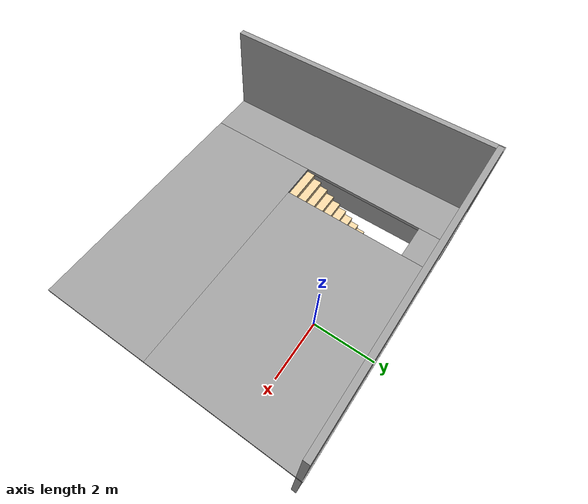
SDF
<?xml version='1.0'?>
<sdf version='1.6'>
  <model name='wizzy_house'>
    <pose frame=''>-0.11818 -1.68308 0 0 -0 0</pose>
    <link name='Floor_3'>
      <pose frame=''>0 -0 2.5 0 -0 0</pose>
      <visual name='Floor_3_Visual_0'>
        <pose frame=''>-3.44651 0 0.05 0 -0 0</pose>
        <geometry>
          <box>
            <size>1.38082 7.48526 0.1</size>
          </box>
        </geometry>
        <material>
          <script>
            <uri>file://media/materials/scripts/gazebo.material</uri>
            <name>Gazebo/Grey</name>
          </script>
          <ambient>1 1 1 1</ambient>
        </material>
        <meta>
          <layer>1</layer>
        </meta>
      </visual>
      <collision name='Floor_3_Collision_0'>
        <geometry>
          <box>
            <size>1.38082 7.48526 0.1</size>
          </box>
        </geometry>
        <pose frame=''>-3.44651 0 0.05 0 -0 0</pose>
      </collision>
      <visual name='Floor_3_Visual_1'>
        <pose frame=''>0.69041 -2.16748 0.05 0 -0 0</pose>
        <geometry>
          <box>
            <size>6.89302 3.1503 0.1</size>
          </box>
        </geometry>
        <material>
          <script>
            <uri>file://media/materials/scripts/gazebo.material</uri>
            <name>Gazebo/Grey</name>
          </script>
          <ambient>1 1 1 1</ambient>
        </material>
        <meta>
          <layer>1</layer>
        </meta>
      </visual>
      <collision name='Floor_3_Collision_1'>
        <geometry>
          <box>
            <size>6.89302 3.1503 0.1</size>
          </box>
        </geometry>
        <pose frame=''>0.69041 -2.16748 0.05 0 -0 0</pose>
      </collision>
      <visual name='Floor_3_Visual_2'>
        <pose frame=''>1.19041 1.57515 0.05 0 -0 0</pose>
        <geometry>
          <box>
            <size>5.89302 4.33496 0.1</size>
          </box>
        </geometry>
        <material>
          <script>
            <uri>file://media/materials/scripts/gazebo.material</uri>
            <name>Gazebo/Grey</name>
          </script>
          <ambient>1 1 1 1</ambient>
        </material>
        <meta>
          <layer>1</layer>
        </meta>
      </visual>
      <collision name='Floor_3_Collision_2'>
        <geometry>
          <box>
            <size>5.89302 4.33496 0.1</size>
          </box>
        </geometry>
        <pose frame=''>1.19041 1.57515 0.05 0 -0 0</pose>
      </collision>
      <visual name='Floor_3_Visual_3'>
        <pose frame=''>-2.2561 3.32515 0.05 0 -0 0</pose>
        <geometry>
          <box>
            <size>1 0.834964 0.1</size>
          </box>
        </geometry>
        <material>
          <script>
            <uri>file://media/materials/scripts/gazebo.material</uri>
            <name>Gazebo/Grey</name>
          </script>
          <ambient>1 1 1 1</ambient>
        </material>
        <meta>
          <layer>1</layer>
        </meta>
      </visual>
      <collision name='Floor_3_Collision_3'>
        <geometry>
          <box>
            <size>1 0.834964 0.1</size>
          </box>
        </geometry>
        <pose frame=''>-2.2561 3.32515 0.05 0 -0 0</pose>
      </collision>
    </link>
    <link name='Stairs_2'>
      <visual name='Stairs_2_Visual_0'>
        <pose frame=''>-2.2561 2.791 0.083333 0 -0 0</pose>
        <geometry>
          <box>
            <size>1 0.233333 0.166667</size>
          </box>
        </geometry>
        <material>
          <script>
            <uri>file://media/materials/scripts/gazebo.material</uri>
            <name>Gazebo/Grey</name>
          </script>
          <ambient>0.921569 0.807843 0.615686 1</ambient>
        </material>
        <meta>
          <layer>0</layer>
        </meta>
      </visual>
      <collision name='Stairs_2_Collision_0'>
        <geometry>
          <box>
            <size>1 0.233333 0.166667</size>
          </box>
        </geometry>
        <pose frame=''>-2.2561 2.791 0.083333 0 -0 0</pose>
      </collision>
      <visual name='Stairs_2_Visual_1'>
        <pose frame=''>-2.2561 2.55767 0.25 0 -0 0</pose>
        <geometry>
          <box>
            <size>1 0.233333 0.166667</size>
          </box>
        </geometry>
        <material>
          <script>
            <uri>file://media/materials/scripts/gazebo.material</uri>
            <name>Gazebo/Grey</name>
          </script>
          <ambient>0.921569 0.807843 0.615686 1</ambient>
        </material>
        <meta>
          <layer>0</layer>
        </meta>
      </visual>
      <collision name='Stairs_2_Collision_1'>
        <geometry>
          <box>
            <size>1 0.233333 0.166667</size>
          </box>
        </geometry>
        <pose frame=''>-2.2561 2.55767 0.25 0 -0 0</pose>
      </collision>
      <visual name='Stairs_2_Visual_2'>
        <pose frame=''>-2.2561 2.32433 0.416667 0 -0 0</pose>
        <geometry>
          <box>
            <size>1 0.233333 0.166667</size>
          </box>
        </geometry>
        <material>
          <script>
            <uri>file://media/materials/scripts/gazebo.material</uri>
            <name>Gazebo/Grey</name>
          </script>
          <ambient>0.921569 0.807843 0.615686 1</ambient>
        </material>
        <meta>
          <layer>0</layer>
        </meta>
      </visual>
      <collision name='Stairs_2_Collision_2'>
        <geometry>
          <box>
            <size>1 0.233333 0.166667</size>
          </box>
        </geometry>
        <pose frame=''>-2.2561 2.32433 0.416667 0 -0 0</pose>
      </collision>
      <visual name='Stairs_2_Visual_3'>
        <pose frame=''>-2.2561 2.091 0.583333 0 -0 0</pose>
        <geometry>
          <box>
            <size>1 0.233333 0.166667</size>
          </box>
        </geometry>
        <material>
          <script>
            <uri>file://media/materials/scripts/gazebo.material</uri>
            <name>Gazebo/Grey</name>
          </script>
          <ambient>0.921569 0.807843 0.615686 1</ambient>
        </material>
        <meta>
          <layer>0</layer>
        </meta>
      </visual>
      <collision name='Stairs_2_Collision_3'>
        <geometry>
          <box>
            <size>1 0.233333 0.166667</size>
          </box>
        </geometry>
        <pose frame=''>-2.2561 2.091 0.583333 0 -0 0</pose>
      </collision>
      <visual name='Stairs_2_Visual_4'>
        <pose frame=''>-2.2561 1.85767 0.75 0 -0 0</pose>
        <geometry>
          <box>
            <size>1 0.233333 0.166667</size>
          </box>
        </geometry>
        <material>
          <script>
            <uri>file://media/materials/scripts/gazebo.material</uri>
            <name>Gazebo/Grey</name>
          </script>
          <ambient>0.921569 0.807843 0.615686 1</ambient>
        </material>
        <meta>
          <layer>0</layer>
        </meta>
      </visual>
      <collision name='Stairs_2_Collision_4'>
        <geometry>
          <box>
            <size>1 0.233333 0.166667</size>
          </box>
        </geometry>
        <pose frame=''>-2.2561 1.85767 0.75 0 -0 0</pose>
      </collision>
      <visual name='Stairs_2_Visual_5'>
        <pose frame=''>-2.2561 1.62433 0.916667 0 -0 0</pose>
        <geometry>
          <box>
            <size>1 0.233333 0.166667</size>
          </box>
        </geometry>
        <material>
          <script>
            <uri>file://media/materials/scripts/gazebo.material</uri>
            <name>Gazebo/Grey</name>
          </script>
          <ambient>0.921569 0.807843 0.615686 1</ambient>
        </material>
        <meta>
          <layer>0</layer>
        </meta>
      </visual>
      <collision name='Stairs_2_Collision_5'>
        <geometry>
          <box>
            <size>1 0.233333 0.166667</size>
          </box>
        </geometry>
        <pose frame=''>-2.2561 1.62433 0.916667 0 -0 0</pose>
      </collision>
      <visual name='Stairs_2_Visual_6'>
        <pose frame=''>-2.2561 1.391 1.08333 0 -0 0</pose>
        <geometry>
          <box>
            <size>1 0.233333 0.166667</size>
          </box>
        </geometry>
        <material>
          <script>
            <uri>file://media/materials/scripts/gazebo.material</uri>
            <name>Gazebo/Grey</name>
          </script>
          <ambient>0.921569 0.807843 0.615686 1</ambient>
        </material>
        <meta>
          <layer>0</layer>
        </meta>
      </visual>
      <collision name='Stairs_2_Collision_6'>
        <geometry>
          <box>
            <size>1 0.233333 0.166667</size>
          </box>
        </geometry>
        <pose frame=''>-2.2561 1.391 1.08333 0 -0 0</pose>
      </collision>
      <visual name='Stairs_2_Visual_7'>
        <pose frame=''>-2.2561 1.15767 1.25 0 -0 0</pose>
        <geometry>
          <box>
            <size>1 0.233333 0.166667</size>
          </box>
        </geometry>
        <material>
          <script>
            <uri>file://media/materials/scripts/gazebo.material</uri>
            <name>Gazebo/Grey</name>
          </script>
          <ambient>0.921569 0.807843 0.615686 1</ambient>
        </material>
        <meta>
          <layer>0</layer>
        </meta>
      </visual>
      <collision name='Stairs_2_Collision_7'>
        <geometry>
          <box>
            <size>1 0.233333 0.166667</size>
          </box>
        </geometry>
        <pose frame=''>-2.2561 1.15767 1.25 0 -0 0</pose>
      </collision>
      <visual name='Stairs_2_Visual_8'>
        <pose frame=''>-2.2561 0.924333 1.41667 0 -0 0</pose>
        <geometry>
          <box>
            <size>1 0.233333 0.166667</size>
          </box>
        </geometry>
        <material>
          <script>
            <uri>file://media/materials/scripts/gazebo.material</uri>
            <name>Gazebo/Grey</name>
          </script>
          <ambient>0.921569 0.807843 0.615686 1</ambient>
        </material>
        <meta>
          <layer>0</layer>
        </meta>
      </visual>
      <collision name='Stairs_2_Collision_8'>
        <geometry>
          <box>
            <size>1 0.233333 0.166667</size>
          </box>
        </geometry>
        <pose frame=''>-2.2561 0.924333 1.41667 0 -0 0</pose>
      </collision>
      <visual name='Stairs_2_Visual_9'>
        <pose frame=''>-2.2561 0.691 1.58333 0 -0 0</pose>
        <geometry>
          <box>
            <size>1 0.233333 0.166667</size>
          </box>
        </geometry>
        <material>
          <script>
            <uri>file://media/materials/scripts/gazebo.material</uri>
            <name>Gazebo/Grey</name>
          </script>
          <ambient>0.921569 0.807843 0.615686 1</ambient>
        </material>
        <meta>
          <layer>0</layer>
        </meta>
      </visual>
      <collision name='Stairs_2_Collision_9'>
        <geometry>
          <box>
            <size>1 0.233333 0.166667</size>
          </box>
        </geometry>
        <pose frame=''>-2.2561 0.691 1.58333 0 -0 0</pose>
      </collision>
      <visual name='Stairs_2_Visual_10'>
        <pose frame=''>-2.2561 0.457666 1.75 0 -0 0</pose>
        <geometry>
          <box>
            <size>1 0.233333 0.166667</size>
          </box>
        </geometry>
        <material>
          <script>
            <uri>file://media/materials/scripts/gazebo.material</uri>
            <name>Gazebo/Grey</name>
          </script>
          <ambient>0.921569 0.807843 0.615686 1</ambient>
        </material>
        <meta>
          <layer>0</layer>
        </meta>
      </visual>
      <collision name='Stairs_2_Collision_10'>
        <geometry>
          <box>
            <size>1 0.233333 0.166667</size>
          </box>
        </geometry>
        <pose frame=''>-2.2561 0.457666 1.75 0 -0 0</pose>
      </collision>
      <visual name='Stairs_2_Visual_11'>
        <pose frame=''>-2.2561 0.224333 1.91667 0 -0 0</pose>
        <geometry>
          <box>
            <size>1 0.233333 0.166667</size>
          </box>
        </geometry>
        <material>
          <script>
            <uri>file://media/materials/scripts/gazebo.material</uri>
            <name>Gazebo/Grey</name>
          </script>
          <ambient>0.921569 0.807843 0.615686 1</ambient>
        </material>
        <meta>
          <layer>0</layer>
        </meta>
      </visual>
      <collision name='Stairs_2_Collision_11'>
        <geometry>
          <box>
            <size>1 0.233333 0.166667</size>
          </box>
        </geometry>
        <pose frame=''>-2.2561 0.224333 1.91667 0 -0 0</pose>
      </collision>
      <visual name='Stairs_2_Visual_12'>
        <pose frame=''>-2.2561 -0.009001 2.08333 0 -0 0</pose>
        <geometry>
          <box>
            <size>1 0.233333 0.166667</size>
          </box>
        </geometry>
        <material>
          <script>
            <uri>file://media/materials/scripts/gazebo.material</uri>
            <name>Gazebo/Grey</name>
          </script>
          <ambient>0.921569 0.807843 0.615686 1</ambient>
        </material>
        <meta>
          <layer>0</layer>
        </meta>
      </visual>
      <collision name='Stairs_2_Collision_12'>
        <geometry>
          <box>
            <size>1 0.233333 0.166667</size>
          </box>
        </geometry>
        <pose frame=''>-2.2561 -0.009001 2.08333 0 -0 0</pose>
      </collision>
      <visual name='Stairs_2_Visual_13'>
        <pose frame=''>-2.2561 -0.242334 2.25 0 -0 0</pose>
        <geometry>
          <box>
            <size>1 0.233333 0.166667</size>
          </box>
        </geometry>
        <material>
          <script>
            <uri>file://media/materials/scripts/gazebo.material</uri>
            <name>Gazebo/Grey</name>
          </script>
          <ambient>0.921569 0.807843 0.615686 1</ambient>
        </material>
        <meta>
          <layer>0</layer>
        </meta>
      </visual>
      <collision name='Stairs_2_Collision_13'>
        <geometry>
          <box>
            <size>1 0.233333 0.166667</size>
          </box>
        </geometry>
        <pose frame=''>-2.2561 -0.242334 2.25 0 -0 0</pose>
      </collision>
      <visual name='Stairs_2_Visual_14'>
        <pose frame=''>-2.2561 -0.475667 2.41667 0 -0 0</pose>
        <geometry>
          <box>
            <size>1 0.233333 0.166667</size>
          </box>
        </geometry>
        <material>
          <script>
            <uri>file://media/materials/scripts/gazebo.material</uri>
            <name>Gazebo/Grey</name>
          </script>
          <ambient>0.921569 0.807843 0.615686 1</ambient>
        </material>
        <meta>
          <layer>0</layer>
        </meta>
      </visual>
      <collision name='Stairs_2_Collision_14'>
        <geometry>
          <box>
            <size>1 0.233333 0.166667</size>
          </box>
        </geometry>
        <pose frame=''>-2.2561 -0.475667 2.41667 0 -0 0</pose>
      </collision>
    </link>
    <link name='Wall_0'>
      <collision name='Wall_0_Collision'>
        <geometry>
          <box>
            <size>8.25 0.15 2.5</size>
          </box>
        </geometry>
        <pose frame=''>0 0 1.25 0 -0 0</pose>
      </collision>
      <visual name='Wall_0_Visual'>
        <pose frame=''>0 0 1.25 0 -0 0</pose>
        <geometry>
          <box>
            <size>8.25 0.15 2.5</size>
          </box>
        </geometry>
        <material>
          <script>
            <uri>file://media/materials/scripts/gazebo.material</uri>
            <name>Gazebo/Grey</name>
          </script>
          <ambient>1 1 1 1</ambient>
        </material>
        <meta>
          <layer>0</layer>
        </meta>
      </visual>
      <pose frame=''>0.011919 3.64379 0 0 -0 3.14159</pose>
    </link>
    <link name='Wall_1'>
      <collision name='Wall_1_Collision'>
        <geometry>
          <box>
            <size>7.48418 0.15 2.5</size>
          </box>
        </geometry>
        <pose frame=''>0 0 1.25 0 -0 0</pose>
      </collision>
      <visual name='Wall_1_Visual'>
        <pose frame=''>0 0 1.25 0 -0 0</pose>
        <geometry>
          <box>
            <size>7.48418 0.15 2.5</size>
          </box>
        </geometry>
        <material>
          <script>
            <uri>file://media/materials/scripts/gazebo.material</uri>
            <name>Gazebo/Grey</name>
          </script>
          <ambient>1 1 1 1</ambient>
        </material>
        <meta>
          <layer>0</layer>
        </meta>
      </visual>
      <pose frame=''>-4.02652 -0 0 0 -0 -1.56133</pose>
    </link>
    <link name='Wall_10'>
      <collision name='Wall_10_Collision'>
        <geometry>
          <box>
            <size>7.48418 0.15 2.5</size>
          </box>
        </geometry>
        <pose frame=''>0 0 1.25 0 -0 0</pose>
      </collision>
      <visual name='Wall_10_Visual'>
        <pose frame=''>0 0 1.25 0 -0 0</pose>
        <geometry>
          <box>
            <size>7.48418 0.15 2.5</size>
          </box>
        </geometry>
        <material>
          <script>
            <uri>file://media/materials/scripts/gazebo.material</uri>
            <name>Gazebo/Grey</name>
          </script>
          <ambient>1 1 1 1</ambient>
        </material>
        <meta>
          <layer>1</layer>
        </meta>
      </visual>
      <pose frame=''>-4.02652 -0 2.5 0 -0 -1.56133</pose>
    </link>
    <link name='Wall_9'>
      <collision name='Wall_9_Collision'>
        <geometry>
          <box>
            <size>8.25 0.15 2.5</size>
          </box>
        </geometry>
        <pose frame=''>0 0 1.25 0 -0 0</pose>
      </collision>
      <visual name='Wall_9_Visual'>
        <pose frame=''>0 0 1.25 0 -0 0</pose>
        <geometry>
          <box>
            <size>8.25 0.15 2.5</size>
          </box>
        </geometry>
        <material>
          <script>
            <uri>file://media/materials/scripts/gazebo.material</uri>
            <name>Gazebo/Grey</name>
          </script>
          <ambient>1 1 1 1</ambient>
        </material>
        <meta>
          <layer>1</layer>
        </meta>
      </visual>
      <pose frame=''>0.011919 3.64379 2.5 0 -0 3.14159</pose>
    </link>
    <static>1</static>
  </model>
</sdf>
